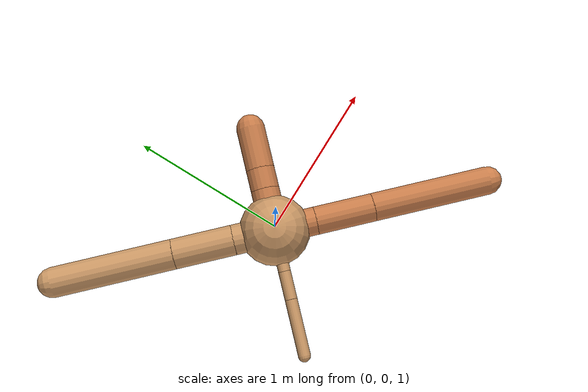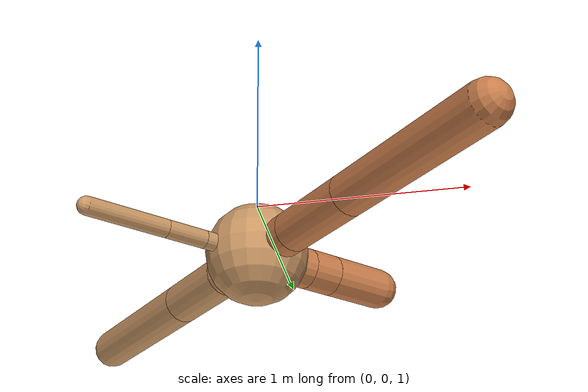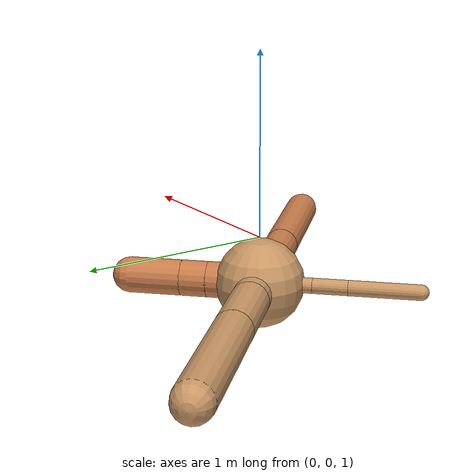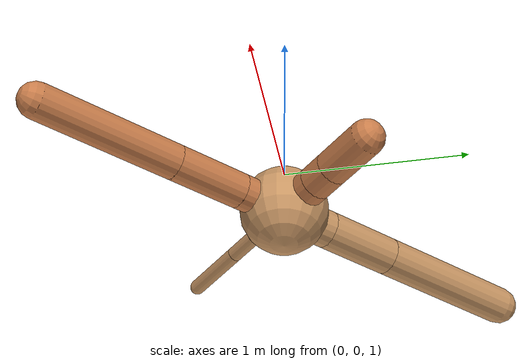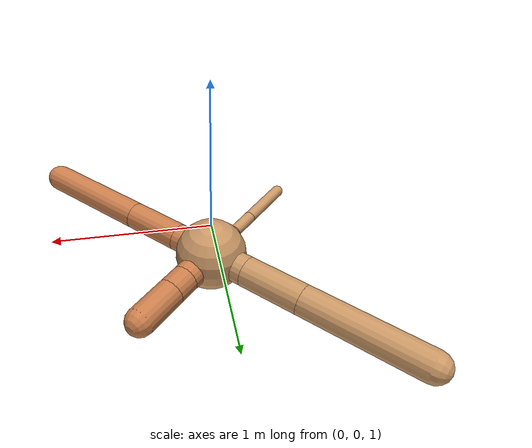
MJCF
<?xml version="1.0" ?>
<mujoco model="ant">

	<compiler angle="degree" coordinate="local" inertiafromgeom="true"/>

	<option integrator="RK4" timestep="0.01"/>

	<custom>

		<numeric data="0.0 0.0 0.55 1.0 0.0 0.0 0.0 0.0 1.0 0.0 -1.0 0.0 -1.0 0.0 1.0" name="init_qpos"/>

	</custom>

	<default>

		<joint armature="1" damping="1" limited="true"/>

		<geom conaffinity="0" condim="3" density="5.0" friction="1.5 0.1 0.1" margin="0.01" rgba="0.8 0.6 0.4 1"/>

	</default>

	<worldbody>

		<body name="torso" pos="0 0 0.75">

			<geom name="torso_geom" pos="0 0 0" size="0.23980534290961025" type="sphere"/>

			<!--joint armature="0" damping="0" limited="false" margin="0.01" name="root" pos="0 0 0" type="free"/-->

			<body name="front_left_leg" pos="0 0 0">

				<geom fromto="0 0 0 0.2 0.2 0" name="aux_1_geom" size="0.09719943926314517" type="capsule" rgba=".8 .5 .3 1"/>

				<body name="aux_1" pos="0.2 0.2 0">

					<joint axis="0 0 1" name="hip_1" pos="0.0 0.0 0.0" range="-40 40" type="hinge"/>

					<geom fromto="0 0 0 0.10162495856910017 0.10162495856910017 0" name="left_leg_geom" size="0.09719943926314517" type="capsule" rgba=".8 .5 .3 1"/>

					<body pos="0.10162495856910017 0.10162495856910017 0" name="front_left_foot">

						<joint axis="-1 1 0" name="ankle_1" pos="0.0 0.0 0.0" range="30 100" type="hinge"/>

						<geom fromto="0 0 0 0.20324991713820034 0.20324991713820034 0" name="left_ankle_geom" size="0.09719943926314517" type="capsule" rgba=".8 .5 .3 1"/>

					</body>

				</body>

			</body>

			<body name="front_right_leg" pos="0 0 0">

				<geom fromto="0 0 0 -0.2 0.2 0" name="aux_2_geom" size="0.10302300048772745" type="capsule"/>

				<body name="aux_2" pos="-0.2 0.2 0">

					<joint axis="0 0 1" name="hip_2" pos="0.0 0.0 0.0" range="-40 40" type="hinge"/>

					<geom fromto="0 0 0 -0.2915601424998368 0.2915601424998368 0" name="right_leg_geom" size="0.10302300048772745" type="capsule"/>

					<body pos="-0.2915601424998368 0.2915601424998368 0" name="front_right_foot">

						<joint axis="1 1 0" name="ankle_2" pos="0.0 0.0 0.0" range="-100 -30" type="hinge"/>

						<geom fromto="0 0 0 -0.5831202849996736 0.5831202849996736 0" name="right_ankle_geom" size="0.10302300048772745" type="capsule"/>

					</body>

				</body>

			</body>

			<body name="left_back_leg" pos="0 0 0">

				<geom fromto="0 0 0 -0.2 -0.2 0" name="aux_3_geom" size="0.04188620329514347" type="capsule"/>

				<body name="aux_3" pos="-0.2 -0.2 0">

					<joint axis="0 0 1" name="hip_3" pos="0.0 0.0 0.0" range="-40 40" type="hinge"/>

					<geom fromto="0 0 0 -0.13492101269651235 -0.13492101269651235 0" name="back_leg_geom" size="0.04188620329514347" type="capsule"/>

					<body pos="-0.13492101269651235 -0.13492101269651235 0" name="left_back_foot">

						<joint axis="-1 1 0" name="ankle_3" pos="0.0 0.0 0.0" range="-100 -30" type="hinge"/>

						<geom fromto="0 0 0 -0.2698420253930247 -0.2698420253930247 0" name="third_ankle_geom" size="0.04188620329514347" type="capsule"/>

					</body>

				</body>

			</body>

			<body name="right_back_leg" pos="0 0 0">

				<geom fromto="0 0 0 0.2 -0.2 0" name="aux_4_geom" size="0.09525535470762299" type="capsule" rgba=".8 .5 .3 1"/>

				<body name="aux_4" pos="0.2 -0.2 0">

					<joint axis="0 0 1" name="hip_4" pos="0.0 0.0 0.0" range="-40 40" type="hinge"/>

					<geom fromto="0 0 0 0.2809583048111748 -0.2809583048111748 0" name="rightback_leg_geom" size="0.09525535470762299" type="capsule" rgba=".8 .5 .3 1"/>

					<body pos="0.2809583048111748 -0.2809583048111748 0" name="right_back_foot">

						<joint axis="1 1 0" name="ankle_4" pos="0.0 0.0 0.0" range="30 100" type="hinge"/>

						<geom fromto="0 0 0 0.5619166096223496 -0.5619166096223496 0" name="fourth_ankle_geom" size="0.09525535470762299" type="capsule" rgba=".8 .5 .3 1"/>

					</body>

				</body>

			</body>

		</body>

	</worldbody>

	<actuator>

		<motor ctrllimited="true" ctrlrange="-1.0 1.0" joint="hip_4" gear="150"/>

		<motor ctrllimited="true" ctrlrange="-1.0 1.0" joint="ankle_4" gear="150"/>

		<motor ctrllimited="true" ctrlrange="-1.0 1.0" joint="hip_1" gear="150"/>

		<motor ctrllimited="true" ctrlrange="-1.0 1.0" joint="ankle_1" gear="150"/>

		<motor ctrllimited="true" ctrlrange="-1.0 1.0" joint="hip_2" gear="150"/>

		<motor ctrllimited="true" ctrlrange="-1.0 1.0" joint="ankle_2" gear="150"/>

		<motor ctrllimited="true" ctrlrange="-1.0 1.0" joint="hip_3" gear="150"/>

		<motor ctrllimited="true" ctrlrange="-1.0 1.0" joint="ankle_3" gear="150"/>

	</actuator>

</mujoco>
